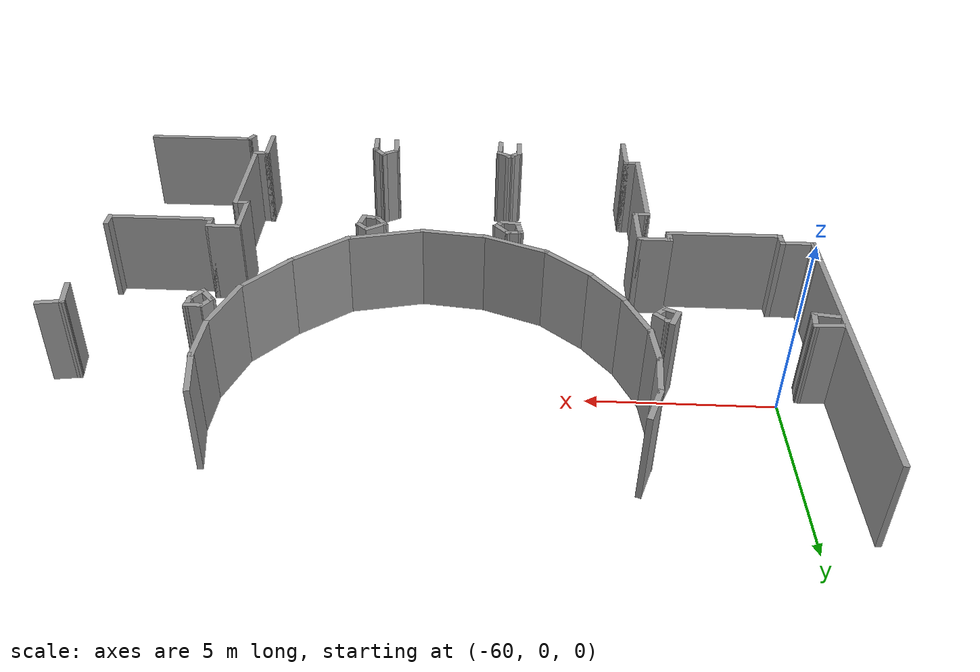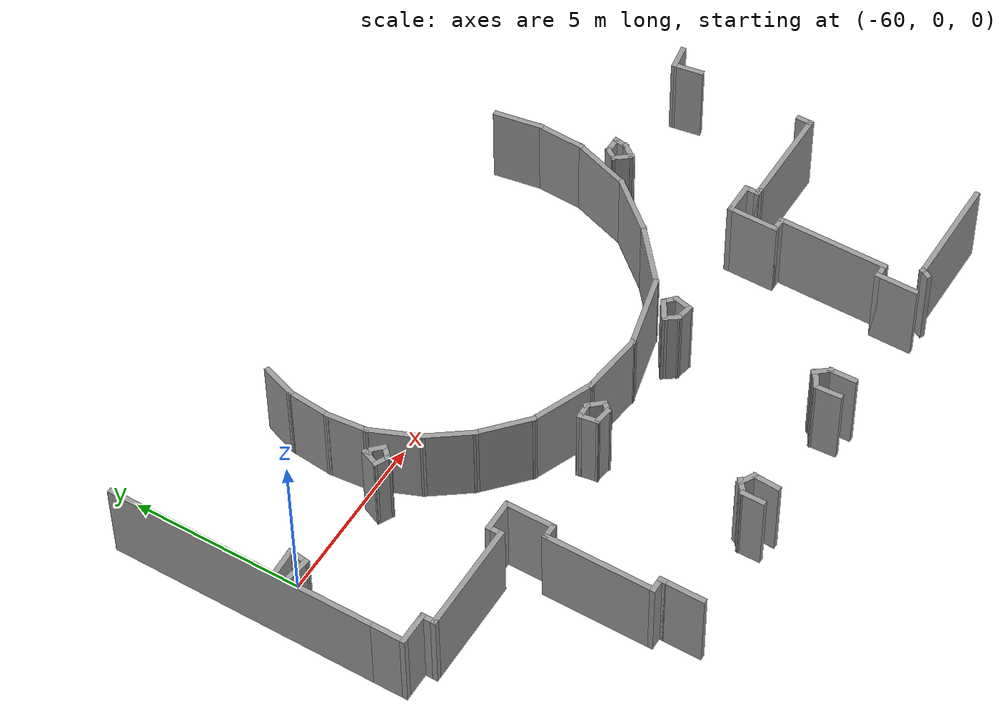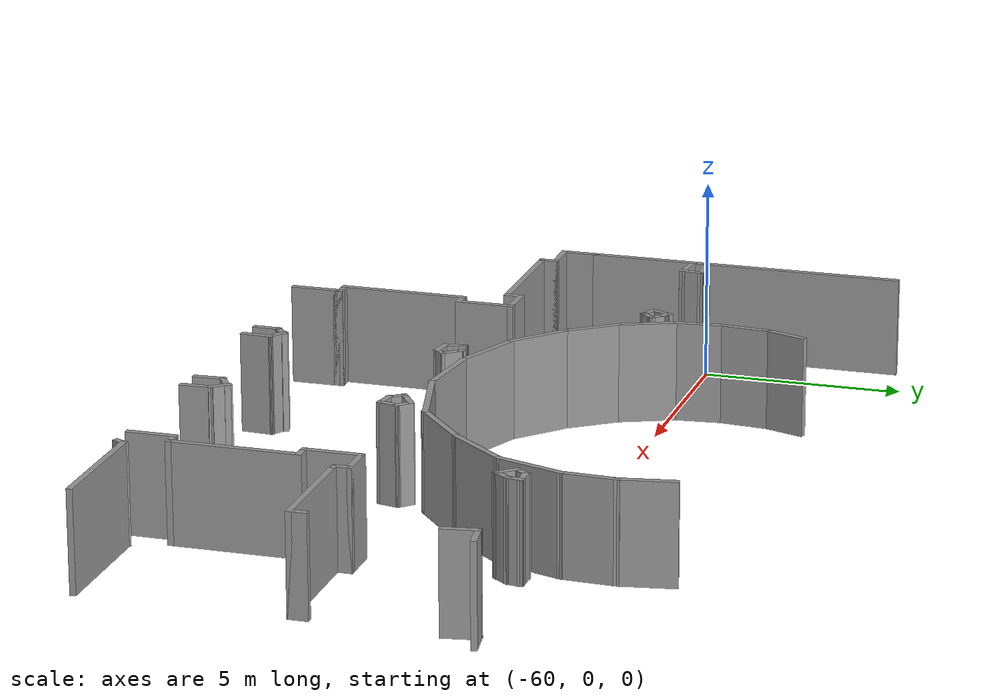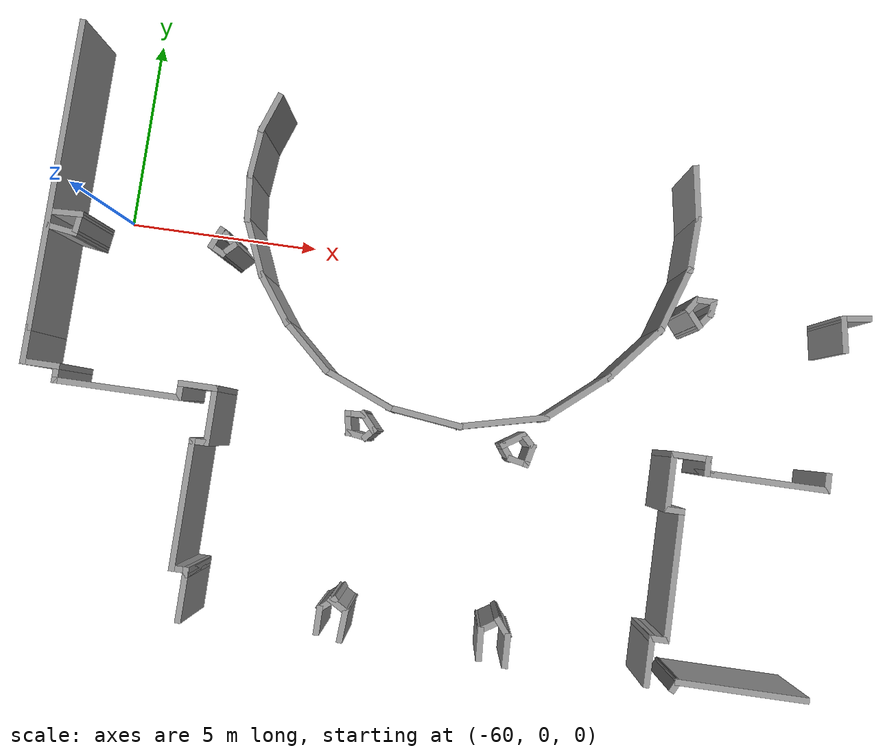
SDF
<sdf version="1.7">
 <model name="TD_n2">
  <pose>-6.42415 -9.1609 0 0 -0 0</pose>
  <link name="Wall_0">
   <collision name="Wall_0_Collision">
    <geometry><box><size>3.25 0.15 2.5</size></box></geometry>
    <pose>0 0 1.25 0 -0 0</pose>
   </collision>
   <visual name="Wall_0_Visual">
    <pose>0 0 1.25 0 -0 0</pose>
    <geometry><box><size>3.25 0.15 2.5</size></box></geometry>
    <material>
     <script><uri>file://media/materials/scripts/gazebo.material</uri><name>Gazebo/Grey</name></script>
     <ambient>1 1 1 1</ambient>
    </material>
    <meta><layer>0</layer></meta>
   </visual>
   <pose>-36.4624 -0.392626 0 0 -0 0</pose>
  </link>
  <link name="Wall_313">
   <collision name="Wall_313_Collision">
    <geometry><box><size>0.5 0.15 2.5</size></box></geometry>
    <pose>0 0 1.25 0 -0 0</pose>
   </collision>
   <visual name="Wall_313_Visual">
    <pose>0 0 1.25 0 -0 0</pose>
    <geometry><box><size>0.5 0.15 2.5</size></box></geometry>
    <material>
     <script><uri>file://media/materials/scripts/gazebo.material</uri><name>Gazebo/Grey</name></script>
     <ambient>1 1 1 1</ambient>
    </material>
    <meta><layer>0</layer></meta>
   </visual>
   <pose>-34.9534 4.82107 0 0 -0 -1.5708</pose>
  </link>
  <link name="Wall_314">
   <collision name="Wall_314_Collision">
    <geometry><box><size>3 0.15 2.5</size></box></geometry>
    <pose>0 0 1.25 0 -0 0</pose>
   </collision>
   <visual name="Wall_314_Visual">
    <pose>0 0 1.25 0 -0 0</pose>
    <geometry><box><size>3 0.15 2.5</size></box></geometry>
    <material>
     <script><uri>file://media/materials/scripts/gazebo.material</uri><name>Gazebo/Grey</name></script>
     <ambient>1 1 1 1</ambient>
    </material>
    <meta><layer>0</layer></meta>
   </visual>
   <pose>-36.3784 4.64607 0 0 -0 3.14159</pose>
  </link>
  <link name="Wall_315">
   <collision name="Wall_315_Collision">
    <geometry><box><size>0.25 0.15 2.5</size></box></geometry>
    <pose>0 0 1.25 0 -0 0</pose>
   </collision>
   <visual name="Wall_315_Visual">
    <pose>0 0 1.25 0 -0 0</pose>
    <geometry><box><size>0.25 0.15 2.5</size></box></geometry>
    <material>
     <script><uri>file://media/materials/scripts/gazebo.material</uri><name>Gazebo/Grey</name></script>
     <ambient>1 1 1 1</ambient>
    </material>
    <meta><layer>0</layer></meta>
   </visual>
   <pose>-37.8534 4.64607 0 0 -0 3.14159</pose>
  </link>
  <link name="Wall_316">
   <collision name="Wall_316_Collision">
    <geometry><box><size>0.5 0.15 2.5</size></box></geometry>
    <pose>0 0 1.25 0 -0 0</pose>
   </collision>
   <visual name="Wall_316_Visual">
    <pose>0 0 1.25 0 -0 0</pose>
    <geometry><box><size>0.5 0.15 2.5</size></box></geometry>
    <material>
     <script><uri>file://media/materials/scripts/gazebo.material</uri><name>Gazebo/Grey</name></script>
     <ambient>1 1 1 1</ambient>
    </material>
    <meta><layer>0</layer></meta>
   </visual>
   <pose>-37.9034 4.82107 0 0 -0 1.5708</pose>
  </link>
  <link name="Wall_317">
   <collision name="Wall_317_Collision">
    <geometry><box><size>1 0.15 2.5</size></box></geometry>
    <pose>0 0 1.25 0 -0 0</pose>
   </collision>
   <visual name="Wall_317_Visual">
    <pose>0 0 1.25 0 -0 0</pose>
    <geometry><box><size>1 0.15 2.5</size></box></geometry>
    <material>
     <script><uri>file://media/materials/scripts/gazebo.material</uri><name>Gazebo/Grey</name></script>
     <ambient>1 1 1 1</ambient>
    </material>
    <meta><layer>0</layer></meta>
   </visual>
   <pose>-38.3284 4.99607 0 0 -0 3.14159</pose>
  </link>
  <link name="Wall_319">
   <collision name="Wall_319_Collision">
    <geometry><box><size>1.5 0.15 2.5</size></box></geometry>
    <pose>0 0 1.25 0 -0 0</pose>
   </collision>
   <visual name="Wall_319_Visual">
    <pose>0 0 1.25 0 -0 0</pose>
    <geometry><box><size>1.5 0.15 2.5</size></box></geometry>
    <material>
     <script><uri>file://media/materials/scripts/gazebo.material</uri><name>Gazebo/Grey</name></script>
     <ambient>1 1 1 1</ambient>
    </material>
    <meta><layer>0</layer></meta>
   </visual>
   <pose>-38.7534 4.32107 0 0 -0 -1.5708</pose>
  </link>
  <link name="Wall_320">
   <collision name="Wall_320_Collision">
    <geometry><box><size>0.5 0.15 2.5</size></box></geometry>
    <pose>0 0 1.25 0 -0 0</pose>
   </collision>
   <visual name="Wall_320_Visual">
    <pose>0 0 1.25 0 -0 0</pose>
    <geometry><box><size>0.5 0.15 2.5</size></box></geometry>
    <material>
     <script><uri>file://media/materials/scripts/gazebo.material</uri><name>Gazebo/Grey</name></script>
     <ambient>1 1 1 1</ambient>
    </material>
    <meta><layer>0</layer></meta>
   </visual>
   <pose>-38.5784 3.64607 0 0 -0 0</pose>
  </link>
  <link name="Wall_321">
   <collision name="Wall_321_Collision">
    <geometry><box><size>3.25 0.15 2.5</size></box></geometry>
    <pose>0 0 1.25 0 -0 0</pose>
   </collision>
   <visual name="Wall_321_Visual">
    <pose>0 0 1.25 0 -0 0</pose>
    <geometry><box><size>3.25 0.15 2.5</size></box></geometry>
    <material>
     <script><uri>file://media/materials/scripts/gazebo.material</uri><name>Gazebo/Grey</name></script>
     <ambient>1 1 1 1</ambient>
    </material>
    <meta><layer>0</layer></meta>
   </visual>
   <pose>-38.4034 2.09607 0 0 -0 -1.5708</pose>
  </link>
  <link name="Wall_322">
   <collision name="Wall_322_Collision">
    <geometry><box><size>0.5 0.15 2.5</size></box></geometry>
    <pose>0 0 1.25 0 -0 0</pose>
   </collision>
   <visual name="Wall_322_Visual">
    <pose>0 0 1.25 0 -0 0</pose>
    <geometry><box><size>0.5 0.15 2.5</size></box></geometry>
    <material>
     <script><uri>file://media/materials/scripts/gazebo.material</uri><name>Gazebo/Grey</name></script>
     <ambient>1 1 1 1</ambient>
    </material>
    <meta><layer>0</layer></meta>
   </visual>
   <pose>-38.5784 0.546074 0 0 -0 3.14159</pose>
  </link>
  <link name="Wall_323">
   <collision name="Wall_323_Collision">
    <geometry><box><size>1.25 0.15 2.5</size></box></geometry>
    <pose>0 0 1.25 0 -0 0</pose>
   </collision>
   <visual name="Wall_323_Visual">
    <pose>0 0 1.25 0 -0 0</pose>
    <geometry><box><size>1.25 0.15 2.5</size></box></geometry>
    <material>
     <script><uri>file://media/materials/scripts/gazebo.material</uri><name>Gazebo/Grey</name></script>
     <ambient>1 1 1 1</ambient>
    </material>
    <meta><layer>0</layer></meta>
   </visual>
   <pose>-38.7534 -0.003925 0 0 -0 -1.5708</pose>
  </link>
  <link name="Wall_330">
   <collision name="Wall_330_Collision">
    <geometry><box><size>1.10908 0.15 2.5</size></box></geometry>
    <pose>0 0 1.25 0 -0 0</pose>
   </collision>
   <visual name="Wall_330_Visual">
    <pose>0 0 1.25 0 -0 0</pose>
    <geometry><box><size>1.10908 0.15 2.5</size></box></geometry>
    <material>
     <script><uri>file://media/materials/scripts/gazebo.material</uri><name>Gazebo/Grey</name></script>
     <ambient>1 1 1 1</ambient>
    </material>
    <meta><layer>0</layer></meta>
   </visual>
   <pose>-49.844 12.0698 0 0 -0 -1.91009</pose>
  </link>
  <link name="Wall_331">
   <collision name="Wall_331_Collision">
    <geometry><box><size>1.35173 0.15 2.5</size></box></geometry>
    <pose>0 0 1.25 0 -0 0</pose>
   </collision>
   <visual name="Wall_331_Visual">
    <pose>0 0 1.25 0 -0 0</pose>
    <geometry><box><size>1.35173 0.15 2.5</size></box></geometry>
    <material>
     <script><uri>file://media/materials/scripts/gazebo.material</uri><name>Gazebo/Grey</name></script>
     <ambient>1 1 1 1</ambient>
    </material>
    <meta><layer>0</layer></meta>
   </visual>
   <pose>-50.0568 11.0191 0 0 -0 -1.65945</pose>
  </link>
  <link name="Wall_332">
   <collision name="Wall_332_Collision">
    <geometry><box><size>1.27226 0.15 2.5</size></box></geometry>
    <pose>0 0 1.25 0 -0 0</pose>
   </collision>
   <visual name="Wall_332_Visual">
    <pose>0 0 1.25 0 -0 0</pose>
    <geometry><box><size>1.27226 0.15 2.5</size></box></geometry>
    <material>
     <script><uri>file://media/materials/scripts/gazebo.material</uri><name>Gazebo/Grey</name></script>
     <ambient>1 1 1 1</ambient>
    </material>
    <meta><layer>0</layer></meta>
   </visual>
   <pose>-50.0568 9.862 0 0 -0 -1.47585</pose>
  </link>
  <link name="Wall_333">
   <collision name="Wall_333_Collision">
    <geometry><box><size>1.59255 0.15 2.5</size></box></geometry>
    <pose>0 0 1.25 0 -0 0</pose>
   </collision>
   <visual name="Wall_333_Visual">
    <pose>0 0 1.25 0 -0 0</pose>
    <geometry><box><size>1.59255 0.15 2.5</size></box></geometry>
    <material>
     <script><uri>file://media/materials/scripts/gazebo.material</uri><name>Gazebo/Grey</name></script>
     <ambient>1 1 1 1</ambient>
    </material>
    <meta><layer>0</layer></meta>
   </visual>
   <pose>-49.7243 8.63839 0 0 -0 -1.17317</pose>
  </link>
  <link name="Wall_334">
   <collision name="Wall_334_Collision">
    <geometry><box><size>1.50138 0.15 2.5</size></box></geometry>
    <pose>0 0 1.25 0 -0 0</pose>
   </collision>
   <visual name="Wall_334_Visual">
    <pose>0 0 1.25 0 -0 0</pose>
    <geometry><box><size>1.50138 0.15 2.5</size></box></geometry>
    <material>
     <script><uri>file://media/materials/scripts/gazebo.material</uri><name>Gazebo/Grey</name></script>
     <ambient>1 1 1 1</ambient>
    </material>
    <meta><layer>0</layer></meta>
   </visual>
   <pose>-49.046 7.42808 0 0 -0 -0.939106</pose>
  </link>
  <link name="Wall_335">
   <collision name="Wall_335_Collision">
    <geometry><box><size>1.69419 0.15 2.5</size></box></geometry>
    <pose>0 0 1.25 0 -0 0</pose>
   </collision>
   <visual name="Wall_335_Visual">
    <pose>0 0 1.25 0 -0 0</pose>
    <geometry><box><size>1.69419 0.15 2.5</size></box></geometry>
    <material>
     <script><uri>file://media/materials/scripts/gazebo.material</uri><name>Gazebo/Grey</name></script>
     <ambient>1 1 1 1</ambient>
    </material>
    <meta><layer>0</layer></meta>
   </visual>
   <pose>-48.0751 6.36407 0 0 -0 -0.736656</pose>
  </link>
  <link name="Wall_336">
   <collision name="Wall_336_Collision">
    <geometry><box><size>1.96292 0.15 2.5</size></box></geometry>
    <pose>0 0 1.25 0 -0 0</pose>
   </collision>
   <visual name="Wall_336_Visual">
    <pose>0 0 1.25 0 -0 0</pose>
    <geometry><box><size>1.96292 0.15 2.5</size></box></geometry>
    <material>
     <script><uri>file://media/materials/scripts/gazebo.material</uri><name>Gazebo/Grey</name></script>
     <ambient>1 1 1 1</ambient>
    </material>
    <meta><layer>0</layer></meta>
   </visual>
   <pose>-46.6653 5.49956 0 0 -0 -0.391405</pose>
  </link>
  <link name="Wall_337">
   <collision name="Wall_337_Collision">
    <geometry><box><size>1.94487 0.15 2.5</size></box></geometry>
    <pose>0 0 1.25 0 -0 0</pose>
   </collision>
   <visual name="Wall_337_Visual">
    <pose>0 0 1.25 0 -0 0</pose>
    <geometry><box><size>1.94487 0.15 2.5</size></box></geometry>
    <material>
     <script><uri>file://media/materials/scripts/gazebo.material</uri><name>Gazebo/Grey</name></script>
     <ambient>1 1 1 1</ambient>
    </material>
    <meta><layer>0</layer></meta>
   </visual>
   <pose>-44.9363 5.04736 0 0 -0 -0.11884</pose>
  </link>
  <link name="Wall_338">
   <collision name="Wall_338_Collision">
    <geometry><box><size>2.28548 0.15 2.5</size></box></geometry>
    <pose>0 0 1.25 0 -0 0</pose>
   </collision>
   <visual name="Wall_338_Visual">
    <pose>0 0 1.25 0 -0 0</pose>
    <geometry><box><size>2.28548 0.15 2.5</size></box></geometry>
    <material>
     <script><uri>file://media/materials/scripts/gazebo.material</uri><name>Gazebo/Grey</name></script>
     <ambient>1 1 1 1</ambient>
    </material>
    <meta><layer>0</layer></meta>
   </visual>
   <pose>-43.0078 5.19366 0 0 -0 0.238936</pose>
  </link>
  <link name="Wall_339">
   <collision name="Wall_339_Collision">
    <geometry><box><size>1.99943 0.15 2.5</size></box></geometry>
    <pose>0 0 1.25 0 -0 0</pose>
   </collision>
   <visual name="Wall_339_Visual">
    <pose>0 0 1.25 0 -0 0</pose>
    <geometry><box><size>1.99943 0.15 2.5</size></box></geometry>
    <material>
     <script><uri>file://media/materials/scripts/gazebo.material</uri><name>Gazebo/Grey</name></script>
     <ambient>1 1 1 1</ambient>
    </material>
    <meta><layer>0</layer></meta>
   </visual>
   <pose>-41.2655 6.04487 0 0 -0 0.703946</pose>
  </link>
  <link name="Wall_340">
   <collision name="Wall_340_Collision">
    <geometry><box><size>1.88698 0.15 2.5</size></box></geometry>
    <pose>0 0 1.25 0 -0 0</pose>
   </collision>
   <visual name="Wall_340_Visual">
    <pose>0 0 1.25 0 -0 0</pose>
    <geometry><box><size>1.88698 0.15 2.5</size></box></geometry>
    <material>
     <script><uri>file://media/materials/scripts/gazebo.material</uri><name>Gazebo/Grey</name></script>
     <ambient>1 1 1 1</ambient>
    </material>
    <meta><layer>0</layer></meta>
   </visual>
   <pose>-40.002 7.30838 0 0 -0 0.872137</pose>
  </link>
  <link name="Wall_341">
   <collision name="Wall_341_Collision">
    <geometry><box><size>1.83234 0.15 2.5</size></box></geometry>
    <pose>0 0 1.25 0 -0 0</pose>
   </collision>
   <visual name="Wall_341_Visual">
    <pose>0 0 1.25 0 -0 0</pose>
    <geometry><box><size>1.83234 0.15 2.5</size></box></geometry>
    <material>
     <script><uri>file://media/materials/scripts/gazebo.material</uri><name>Gazebo/Grey</name></script>
     <ambient>1 1 1 1</ambient>
    </material>
    <meta><layer>0</layer></meta>
   </visual>
   <pose>-39.1773 8.77139 0 0 -0 1.24905</pose>
  </link>
  <link name="Wall_342">
   <collision name="Wall_342_Collision">
    <geometry><box><size>1.45368 0.15 2.5</size></box></geometry>
    <pose>0 0 1.25 0 -0 0</pose>
   </collision>
   <visual name="Wall_342_Visual">
    <pose>0 0 1.25 0 -0 0</pose>
    <geometry><box><size>1.45368 0.15 2.5</size></box></geometry>
    <material>
     <script><uri>file://media/materials/scripts/gazebo.material</uri><name>Gazebo/Grey</name></script>
     <ambient>1 1 1 1</ambient>
    </material>
    <meta><layer>0</layer></meta>
   </visual>
   <pose>-38.8847 10.2211 0 0 -0 1.53</pose>
  </link>
  <link name="Wall_343">
   <collision name="Wall_343_Collision">
    <geometry><box><size>1.44442 0.15 2.5</size></box></geometry>
    <pose>0 0 1.25 0 -0 0</pose>
   </collision>
   <visual name="Wall_343_Visual">
    <pose>0 0 1.25 0 -0 0</pose>
    <geometry><box><size>1.44442 0.15 2.5</size></box></geometry>
    <material>
     <script><uri>file://media/materials/scripts/gazebo.material</uri><name>Gazebo/Grey</name></script>
     <ambient>1 1 1 1</ambient>
    </material>
    <meta><layer>0</layer></meta>
   </visual>
   <pose>-38.9645 11.5112 0 0 -0 1.73595</pose>
  </link>
  <link name="Wall_388">
   <collision name="Wall_388_Collision">
    <geometry><box><size>0.25 0.15 2.5</size></box></geometry>
    <pose>0 0 1.25 0 -0 0</pose>
   </collision>
   <visual name="Wall_388_Visual">
    <pose>0 0 1.25 0 -0 0</pose>
    <geometry><box><size>0.25 0.15 2.5</size></box></geometry>
    <material>
     <script><uri>file://media/materials/scripts/gazebo.material</uri><name>Gazebo/Grey</name></script>
     <ambient>1 1 1 1</ambient>
    </material>
    <meta><layer>0</layer></meta>
   </visual>
   <pose>-50.5201 8.85258 0 0 -0 0</pose>
  </link>
  <link name="Wall_389">
   <collision name="Wall_389_Collision">
    <geometry><box><size>0.5 0.15 2.5</size></box></geometry>
    <pose>0 0 1.25 0 -0 0</pose>
   </collision>
   <visual name="Wall_389_Visual">
    <pose>0 0 1.25 0 -0 0</pose>
    <geometry><box><size>0.5 0.15 2.5</size></box></geometry>
    <material>
     <script><uri>file://media/materials/scripts/gazebo.material</uri><name>Gazebo/Grey</name></script>
     <ambient>1 1 1 1</ambient>
    </material>
    <meta><layer>0</layer></meta>
   </visual>
   <pose>-50.3463 8.72884 0 0 -0 -0.785398</pose>
  </link>
  <link name="Wall_390">
   <collision name="Wall_390_Collision">
    <geometry><box><size>0.5 0.15 2.5</size></box></geometry>
    <pose>0 0 1.25 0 -0 0</pose>
   </collision>
   <visual name="Wall_390_Visual">
    <pose>0 0 1.25 0 -0 0</pose>
    <geometry><box><size>0.5 0.15 2.5</size></box></geometry>
    <material>
     <script><uri>file://media/materials/scripts/gazebo.material</uri><name>Gazebo/Grey</name></script>
     <ambient>1 1 1 1</ambient>
    </material>
    <meta><layer>0</layer></meta>
   </visual>
   <pose>-50.3463 8.48135 0 0 -0 -2.35619</pose>
  </link>
  <link name="Wall_391">
   <collision name="Wall_391_Collision">
    <geometry><box><size>0.501846 0.15 2.5</size></box></geometry>
    <pose>0 0 1.25 0 -0 0</pose>
   </collision>
   <visual name="Wall_391_Visual">
    <pose>0 0 1.25 0 -0 0</pose>
    <geometry><box><size>0.501846 0.15 2.5</size></box></geometry>
    <material>
     <script><uri>file://media/materials/scripts/gazebo.material</uri><name>Gazebo/Grey</name></script>
     <ambient>1 1 1 1</ambient>
    </material>
    <meta><layer>0</layer></meta>
   </visual>
   <pose>-50.6271 8.43685 0 0 -0 2.67434</pose>
  </link>
  <link name="Wall_392">
   <collision name="Wall_392_Collision">
    <geometry><box><size>0.615936 0.15 2.5</size></box></geometry>
    <pose>0 0 1.25 0 -0 0</pose>
   </collision>
   <visual name="Wall_392_Visual">
    <pose>0 0 1.25 0 -0 0</pose>
    <geometry><box><size>0.615936 0.15 2.5</size></box></geometry>
    <material>
     <script><uri>file://media/materials/scripts/gazebo.material</uri><name>Gazebo/Grey</name></script>
     <ambient>1 1 1 1</ambient>
    </material>
    <meta><layer>0</layer></meta>
   </visual>
   <pose>-50.6924 8.73022 0 0 -0 1.1659</pose>
  </link>
  <link name="Wall_394">
   <collision name="Wall_394_Collision">
    <geometry><box><size>0.5 0.15 2.5</size></box></geometry>
    <pose>0 0 1.25 0 -0 0</pose>
   </collision>
   <visual name="Wall_394_Visual">
    <pose>0 0 1.25 0 -0 0</pose>
    <geometry><box><size>0.5 0.15 2.5</size></box></geometry>
    <material>
     <script><uri>file://media/materials/scripts/gazebo.material</uri><name>Gazebo/Grey</name></script>
     <ambient>1 1 1 1</ambient>
    </material>
    <meta><layer>0</layer></meta>
   </visual>
   <pose>-38.4037 8.85258 0 0 -0 0</pose>
  </link>
  <link name="Wall_395">
   <collision name="Wall_395_Collision">
    <geometry><box><size>0.459064 0.15 2.5</size></box></geometry>
    <pose>0 0 1.25 0 -0 0</pose>
   </collision>
   <visual name="Wall_395_Visual">
    <pose>0 0 1.25 0 -0 0</pose>
    <geometry><box><size>0.459064 0.15 2.5</size></box></geometry>
    <material>
     <script><uri>file://media/materials/scripts/gazebo.material</uri><name>Gazebo/Grey</name></script>
     <ambient>1 1 1 1</ambient>
    </material>
    <meta><layer>0</layer></meta>
   </visual>
   <pose>-38.2507 8.69963 0 0 -0 -1.71397</pose>
  </link>
  <link name="Wall_396">
   <collision name="Wall_396_Collision">
    <geometry><box><size>0.566072 0.15 2.5</size></box></geometry>
    <pose>0 0 1.25 0 -0 0</pose>
   </collision>
   <visual name="Wall_396_Visual">
    <pose>0 0 1.25 0 -0 0</pose>
    <geometry><box><size>0.566072 0.15 2.5</size></box></geometry>
    <material>
     <script><uri>file://media/materials/scripts/gazebo.material</uri><name>Gazebo/Grey</name></script>
     <ambient>1 1 1 1</ambient>
    </material>
    <meta><layer>0</layer></meta>
   </visual>
   <pose>-38.3952 8.37843 0 0 -0 -2.19959</pose>
  </link>
  <link name="Wall_397">
   <collision name="Wall_397_Collision">
    <geometry><box><size>0.627835 0.15 2.5</size></box></geometry>
    <pose>0 0 1.25 0 -0 0</pose>
   </collision>
   <visual name="Wall_397_Visual">
    <pose>0 0 1.25 0 -0 0</pose>
    <geometry><box><size>0.627835 0.15 2.5</size></box></geometry>
    <material>
     <script><uri>file://media/materials/scripts/gazebo.material</uri><name>Gazebo/Grey</name></script>
     <ambient>1 1 1 1</ambient>
    </material>
    <meta><layer>0</layer></meta>
   </visual>
   <pose>-38.6705 8.39373 0 0 -0 2.26553</pose>
  </link>
  <link name="Wall_398">
   <collision name="Wall_398_Collision">
    <geometry><box><size>0.480884 0.15 2.5</size></box></geometry>
    <pose>0 0 1.25 0 -0 0</pose>
   </collision>
   <visual name="Wall_398_Visual">
    <pose>0 0 1.25 0 -0 0</pose>
    <geometry><box><size>0.480884 0.15 2.5</size></box></geometry>
    <material>
     <script><uri>file://media/materials/scripts/gazebo.material</uri><name>Gazebo/Grey</name></script>
     <ambient>1 1 1 1</ambient>
    </material>
    <meta><layer>0</layer></meta>
   </visual>
   <pose>-38.7316 8.71492 0 0 -0 0.982794</pose>
  </link>
  <link name="Wall_404">
   <collision name="Wall_404_Collision">
    <geometry><box><size>0.915367 0.15 2.5</size></box></geometry>
    <pose>0 0 1.25 0 -0 0</pose>
   </collision>
   <visual name="Wall_404_Visual">
    <pose>0 0 1.25 0 -0 0</pose>
    <geometry><box><size>0.915367 0.15 2.5</size></box></geometry>
    <material>
     <script><uri>file://media/materials/scripts/gazebo.material</uri><name>Gazebo/Grey</name></script>
     <ambient>1 1 1 1</ambient>
    </material>
    <meta><layer>0</layer></meta>
   </visual>
   <pose>-54.5315 8.83729 0 0 -0 0.039979</pose>
  </link>
  <link name="Wall_405">
   <collision name="Wall_405_Collision">
    <geometry><box><size>0.643253 0.15 2.5</size></box></geometry>
    <pose>0 0 1.25 0 -0 0</pose>
   </collision>
   <visual name="Wall_405_Visual">
    <pose>0 0 1.25 0 -0 0</pose>
    <geometry><box><size>0.643253 0.15 2.5</size></box></geometry>
    <material>
     <script><uri>file://media/materials/scripts/gazebo.material</uri><name>Gazebo/Grey</name></script>
     <ambient>1 1 1 1</ambient>
    </material>
    <meta><layer>0</layer></meta>
   </visual>
   <pose>-54.1797 8.60786 0 0 -0 -1.69515</pose>
  </link>
  <link name="Wall_406">
   <collision name="Wall_406_Collision">
    <geometry><box><size>0.798917 0.15 2.5</size></box></geometry>
    <pose>0 0 1.25 0 -0 0</pose>
   </collision>
   <visual name="Wall_406_Visual">
    <pose>0 0 1.25 0 -0 0</pose>
    <geometry><box><size>0.798917 0.15 2.5</size></box></geometry>
    <material>
     <script><uri>file://media/materials/scripts/gazebo.material</uri><name>Gazebo/Grey</name></script>
     <ambient>1 1 1 1</ambient>
    </material>
    <meta><layer>0</layer></meta>
   </visual>
   <pose>-54.5315 8.40902 0 0 -0 2.9997</pose>
  </link>
  <link name="Wall_412">
   <collision name="Wall_412_Collision">
    <geometry><box><size>0.768649 0.15 2.5</size></box></geometry>
    <pose>0 0 1.25 0 -0 0</pose>
   </collision>
   <visual name="Wall_412_Visual">
    <pose>0 0 1.25 0 -0 0</pose>
    <geometry><box><size>0.768649 0.15 2.5</size></box></geometry>
    <material>
     <script><uri>file://media/materials/scripts/gazebo.material</uri><name>Gazebo/Grey</name></script>
     <ambient>1 1 1 1</ambient>
    </material>
    <meta><layer>0</layer></meta>
   </visual>
   <pose>-34.6937 8.92906 0 0 -0 -2.9927</pose>
  </link>
  <link name="Wall_413">
   <collision name="Wall_413_Collision">
    <geometry><box><size>0.924483 0.15 2.5</size></box></geometry>
    <pose>0 0 1.25 0 -0 0</pose>
   </collision>
   <visual name="Wall_413_Visual">
    <pose>0 0 1.25 0 -0 0</pose>
    <geometry><box><size>0.924483 0.15 2.5</size></box></geometry>
    <material>
     <script><uri>file://media/materials/scripts/gazebo.material</uri><name>Gazebo/Grey</name></script>
     <ambient>1 1 1 1</ambient>
    </material>
    <meta><layer>0</layer></meta>
   </visual>
   <pose>-34.9385 8.50079 0 0 -0 -1.41214</pose>
  </link>
  <link name="Wall_419">
   <collision name="Wall_419_Collision">
    <geometry><box><size>0.634399 0.15 2.5</size></box></geometry>
    <pose>0 0 1.25 0 -0 0</pose>
   </collision>
   <visual name="Wall_419_Visual">
    <pose>0 0 1.25 0 -0 0</pose>
    <geometry><box><size>0.634399 0.15 2.5</size></box></geometry>
    <material>
     <script><uri>file://media/materials/scripts/gazebo.material</uri><name>Gazebo/Grey</name></script>
     <ambient>1 1 1 1</ambient>
    </material>
    <meta><layer>0</layer></meta>
   </visual>
   <pose>-46.2842 4.73255 0 0 -0 -0.844154</pose>
  </link>
  <link name="Wall_420">
   <collision name="Wall_420_Collision">
    <geometry><box><size>0.4206 0.15 2.5</size></box></geometry>
    <pose>0 0 1.25 0 -0 0</pose>
   </collision>
   <visual name="Wall_420_Visual">
    <pose>0 0 1.25 0 -0 0</pose>
    <geometry><box><size>0.4206 0.15 2.5</size></box></geometry>
    <material>
     <script><uri>file://media/materials/scripts/gazebo.material</uri><name>Gazebo/Grey</name></script>
     <ambient>1 1 1 1</ambient>
    </material>
    <meta><layer>0</layer></meta>
   </visual>
   <pose>-46.2138 4.45096 0 0 -0 -2.30361</pose>
  </link>
  <link name="Wall_421">
   <collision name="Wall_421_Collision">
    <geometry><box><size>0.576673 0.15 2.5</size></box></geometry>
    <pose>0 0 1.25 0 -0 0</pose>
   </collision>
   <visual name="Wall_421_Visual">
    <pose>0 0 1.25 0 -0 0</pose>
    <geometry><box><size>0.576673 0.15 2.5</size></box></geometry>
    <material>
     <script><uri>file://media/materials/scripts/gazebo.material</uri><name>Gazebo/Grey</name></script>
     <ambient>1 1 1 1</ambient>
    </material>
    <meta><layer>0</layer></meta>
   </visual>
   <pose>-46.5155 4.38056 0 0 -0 2.9997</pose>
  </link>
  <link name="Wall_422">
   <collision name="Wall_422_Collision">
    <geometry><box><size>0.619556 0.15 2.5</size></box></geometry>
    <pose>0 0 1.25 0 -0 0</pose>
   </collision>
   <visual name="Wall_422_Visual">
    <pose>0 0 1.25 0 -0 0</pose>
    <geometry><box><size>0.619556 0.15 2.5</size></box></geometry>
    <material>
     <script><uri>file://media/materials/scripts/gazebo.material</uri><name>Gazebo/Grey</name></script>
     <ambient>1 1 1 1</ambient>
    </material>
    <meta><layer>0</layer></meta>
   </visual>
   <pose>-46.7669 4.64203 0 0 -0 1.74299</pose>
  </link>
  <link name="Wall_423">
   <collision name="Wall_423_Collision">
    <geometry><box><size>0.512603 0.15 2.5</size></box></geometry>
    <pose>0 0 1.25 0 -0 0</pose>
   </collision>
   <visual name="Wall_423_Visual">
    <pose>0 0 1.25 0 -0 0</pose>
    <geometry><box><size>0.512603 0.15 2.5</size></box></geometry>
    <material>
     <script><uri>file://media/materials/scripts/gazebo.material</uri><name>Gazebo/Grey</name></script>
     <ambient>1 1 1 1</ambient>
    </material>
    <meta><layer>0</layer></meta>
   </visual>
   <pose>-46.6261 4.8834 0 0 -0 0.055499</pose>
  </link>
  <link name="Wall_425">
   <collision name="Wall_425_Collision">
    <geometry><box><size>0.462894 0.15 2.5</size></box></geometry>
    <pose>0 0 1.25 0 -0 0</pose>
   </collision>
   <visual name="Wall_425_Visual">
    <pose>0 0 1.25 0 -0 0</pose>
    <geometry><box><size>0.462894 0.15 2.5</size></box></geometry>
    <material>
     <script><uri>file://media/materials/scripts/gazebo.material</uri><name>Gazebo/Grey</name></script>
     <ambient>1 1 1 1</ambient>
    </material>
    <meta><layer>0</layer></meta>
   </visual>
   <pose>-42.3118 4.80294 0 0 -0 -0.785398</pose>
  </link>
  <link name="Wall_426">
   <collision name="Wall_426_Collision">
    <geometry><box><size>0.603783 0.15 2.5</size></box></geometry>
    <pose>0 0 1.25 0 -0 0</pose>
   </collision>
   <visual name="Wall_426_Visual">
    <pose>0 0 1.25 0 -0 0</pose>
    <geometry><box><size>0.603783 0.15 2.5</size></box></geometry>
    <material>
     <script><uri>file://media/materials/scripts/gazebo.material</uri><name>Gazebo/Grey</name></script>
     <ambient>1 1 1 1</ambient>
    </material>
    <meta><layer>0</layer></meta>
   </visual>
   <pose>-42.2514 4.47107 0 0 -0 -1.79427</pose>
  </link>
  <link name="Wall_427">
   <collision name="Wall_427_Collision">
    <geometry><box><size>0.560238 0.15 2.5</size></box></geometry>
    <pose>0 0 1.25 0 -0 0</pose>
   </collision>
   <visual name="Wall_427_Visual">
    <pose>0 0 1.25 0 -0 0</pose>
    <geometry><box><size>0.560238 0.15 2.5</size></box></geometry>
    <material>
     <script><uri>file://media/materials/scripts/gazebo.material</uri><name>Gazebo/Grey</name></script>
     <ambient>1 1 1 1</ambient>
    </material>
    <meta><layer>0</layer></meta>
   </visual>
   <pose>-42.5029 4.29005 0 0 -0 2.9442</pose>
  </link>
  <link name="Wall_428">
   <collision name="Wall_428_Collision">
    <geometry><box><size>0.524134 0.15 2.5</size></box></geometry>
    <pose>0 0 1.25 0 -0 0</pose>
   </collision>
   <visual name="Wall_428_Visual">
    <pose>0 0 1.25 0 -0 0</pose>
    <geometry><box><size>0.524134 0.15 2.5</size></box></geometry>
    <material>
     <script><uri>file://media/materials/scripts/gazebo.material</uri><name>Gazebo/Grey</name></script>
     <ambient>1 1 1 1</ambient>
    </material>
    <meta><layer>0</layer></meta>
   </visual>
   <pose>-42.8146 4.48113 0 0 -0 2.20355</pose>
  </link>
  <link name="Wall_429">
   <collision name="Wall_429_Collision">
    <geometry><box><size>0.7023 0.15 2.5</size></box></geometry>
    <pose>0 0 1.25 0 -0 0</pose>
   </collision>
   <visual name="Wall_429_Visual">
    <pose>0 0 1.25 0 -0 0</pose>
    <geometry><box><size>0.7023 0.15 2.5</size></box></geometry>
    <material>
     <script><uri>file://media/materials/scripts/gazebo.material</uri><name>Gazebo/Grey</name></script>
     <ambient>1 1 1 1</ambient>
    </material>
    <meta><layer>0</layer></meta>
   </visual>
   <pose>-42.6939 4.78283 0 0 -0 0.577902</pose>
  </link>
  <link name="Wall_431">
   <collision name="Wall_431_Collision">
    <geometry><box><size>0.591583 0.15 2.5</size></box></geometry>
    <pose>0 0 1.25 0 -0 0</pose>
   </collision>
   <visual name="Wall_431_Visual">
    <pose>0 0 1.25 0 -0 0</pose>
    <geometry><box><size>0.591583 0.15 2.5</size></box></geometry>
    <material>
     <script><uri>file://media/materials/scripts/gazebo.material</uri><name>Gazebo/Grey</name></script>
     <ambient>1 1 1 1</ambient>
    </material>
    <meta><layer>0</layer></meta>
   </visual>
   <pose>-46.3546 0.257277 0 0 -0 -0.524796</pose>
  </link>
  <link name="Wall_432">
   <collision name="Wall_432_Collision">
    <geometry><box><size>0.835044 0.15 2.5</size></box></geometry>
    <pose>0 0 1.25 0 -0 0</pose>
   </collision>
   <visual name="Wall_432_Visual">
    <pose>0 0 1.25 0 -0 0</pose>
    <geometry><box><size>0.835044 0.15 2.5</size></box></geometry>
    <material>
     <script><uri>file://media/materials/scripts/gazebo.material</uri><name>Gazebo/Grey</name></script>
     <ambient>1 1 1 1</ambient>
    </material>
    <meta><layer>0</layer></meta>
   </visual>
   <pose>-46.1836 -0.195279 0 0 -0 -1.62955</pose>
  </link>
  <link name="Wall_435">
   <collision name="Wall_435_Collision">
    <geometry><box><size>0.71318 0.15 2.5</size></box></geometry>
    <pose>0 0 1.25 0 -0 0</pose>
   </collision>
   <visual name="Wall_435_Visual">
    <pose>0 0 1.25 0 -0 0</pose>
    <geometry><box><size>0.71318 0.15 2.5</size></box></geometry>
    <material>
     <script><uri>file://media/materials/scripts/gazebo.material</uri><name>Gazebo/Grey</name></script>
     <ambient>1 1 1 1</ambient>
    </material>
    <meta><layer>0</layer></meta>
   </visual>
   <pose>-46.7871 -0.155051 0 0 -0 1.5708</pose>
  </link>
  <link name="Wall_436">
   <collision name="Wall_436_Collision">
    <geometry><box><size>0.564652 0.15 2.5</size></box></geometry>
    <pose>0 0 1.25 0 -0 0</pose>
   </collision>
   <visual name="Wall_436_Visual">
    <pose>0 0 1.25 0 -0 0</pose>
    <geometry><box><size>0.564652 0.15 2.5</size></box></geometry>
    <material>
     <script><uri>file://media/materials/scripts/gazebo.material</uri><name>Gazebo/Grey</name></script>
     <ambient>1 1 1 1</ambient>
    </material>
    <meta><layer>0</layer></meta>
   </visual>
   <pose>-46.6261 0.257277 0 0 -0 0.682317</pose>
  </link>
  <link name="Wall_438">
   <collision name="Wall_438_Collision">
    <geometry><box><size>0.592955 0.15 2.5</size></box></geometry>
    <pose>0 0 1.25 0 -0 0</pose>
   </collision>
   <visual name="Wall_438_Visual">
    <pose>0 0 1.25 0 -0 0</pose>
    <geometry><box><size>0.592955 0.15 2.5</size></box></geometry>
    <material>
     <script><uri>file://media/materials/scripts/gazebo.material</uri><name>Gazebo/Grey</name></script>
     <ambient>1 1 1 1</ambient>
    </material>
    <meta><layer>0</layer></meta>
   </visual>
   <pose>-42.342 0.27739 0 0 -0 -0.881872</pose>
  </link>
  <link name="Wall_439">
   <collision name="Wall_439_Collision">
    <geometry><box><size>0.834157 0.15 2.5</size></box></geometry>
    <pose>0 0 1.25 0 -0 0</pose>
   </collision>
   <visual name="Wall_439_Visual">
    <pose>0 0 1.25 0 -0 0</pose>
    <geometry><box><size>0.834157 0.15 2.5</size></box></geometry>
    <material>
     <script><uri>file://media/materials/scripts/gazebo.material</uri><name>Gazebo/Grey</name></script>
     <ambient>1 1 1 1</ambient>
    </material>
    <meta><layer>0</layer></meta>
   </visual>
   <pose>-42.1911 -0.235506 0 0 -0 -1.54139</pose>
  </link>
  <link name="Wall_44">
   <collision name="Wall_44_Collision">
    <geometry><box><size>0.365621 0.15 2.5</size></box></geometry>
    <pose>0 0 1.25 0 -0 0</pose>
   </collision>
   <visual name="Wall_44_Visual">
    <pose>0 0 1.25 0 -0 0</pose>
    <geometry><box><size>0.365621 0.15 2.5</size></box></geometry>
    <material>
     <script><uri>file://media/materials/scripts/gazebo.material</uri><name>Gazebo/Grey</name></script>
     <ambient>1 1 1 1</ambient>
    </material>
    <meta><layer>0</layer></meta>
   </visual>
   <pose>-38.0609 -0.488916 0 0 -0 1.10428</pose>
  </link>
  <link name="Wall_442">
   <collision name="Wall_442_Collision">
    <geometry><box><size>0.814966 0.15 2.5</size></box></geometry>
    <pose>0 0 1.25 0 -0 0</pose>
   </collision>
   <visual name="Wall_442_Visual">
    <pose>0 0 1.25 0 -0 0</pose>
    <geometry><box><size>0.814966 0.15 2.5</size></box></geometry>
    <material>
     <script><uri>file://media/materials/scripts/gazebo.material</uri><name>Gazebo/Grey</name></script>
     <ambient>1 1 1 1</ambient>
    </material>
    <meta><layer>0</layer></meta>
   </visual>
   <pose>-42.8448 -0.165109 0 0 -0 1.63133</pose>
  </link>
  <link name="Wall_443">
   <collision name="Wall_443_Collision">
    <geometry><box><size>0.646769 0.15 2.5</size></box></geometry>
    <pose>0 0 1.25 0 -0 0</pose>
   </collision>
   <visual name="Wall_443_Visual">
    <pose>0 0 1.25 0 -0 0</pose>
    <geometry><box><size>0.646769 0.15 2.5</size></box></geometry>
    <material>
     <script><uri>file://media/materials/scripts/gazebo.material</uri><name>Gazebo/Grey</name></script>
     <ambient>1 1 1 1</ambient>
    </material>
    <meta><layer>0</layer></meta>
   </visual>
   <pose>-42.6537 0.297503 0 0 -0 0.554307</pose>
  </link>
  <link name="Wall_81">
   <collision name="Wall_81_Collision">
    <geometry><box><size>1.25 0.15 2.5</size></box></geometry>
    <pose>0 0 1.25 0 -0 0</pose>
   </collision>
   <visual name="Wall_81_Visual">
    <pose>0 0 1.25 0 -0 0</pose>
    <geometry><box><size>1.25 0.15 2.5</size></box></geometry>
    <material>
     <script><uri>file://media/materials/scripts/gazebo.material</uri><name>Gazebo/Grey</name></script>
     <ambient>1 1 1 1</ambient>
    </material>
    <meta><layer>0</layer></meta>
   </visual>
   <pose>-50.1332 -0.071193 0 0 -0 1.5708</pose>
  </link>
  <link name="Wall_84">
   <collision name="Wall_84_Collision">
    <geometry><box><size>0.15 0.15 2.5</size></box></geometry>
    <pose>0 0 1.25 0 -0 0</pose>
   </collision>
   <visual name="Wall_84_Visual">
    <pose>0 0 1.25 0 -0 0</pose>
    <geometry><box><size>0.15 0.15 2.5</size></box></geometry>
    <material>
     <script><uri>file://media/materials/scripts/gazebo.material</uri><name>Gazebo/Grey</name></script>
     <ambient>1 1 1 1</ambient>
    </material>
    <meta><layer>0</layer></meta>
   </visual>
   <pose>-50.1332 0.478807 0 0 -0 0</pose>
  </link>
  <link name="Wall_85">
   <collision name="Wall_85_Collision">
    <geometry><box><size>0.25 0.15 2.5</size></box></geometry>
    <pose>0 0 1.25 0 -0 0</pose>
   </collision>
   <visual name="Wall_85_Visual">
    <pose>0 0 1.25 0 -0 0</pose>
    <geometry><box><size>0.25 0.15 2.5</size></box></geometry>
    <material>
     <script><uri>file://media/materials/scripts/gazebo.material</uri><name>Gazebo/Grey</name></script>
     <ambient>1 1 1 1</ambient>
    </material>
    <meta><layer>0</layer></meta>
   </visual>
   <pose>-50.1332 0.528807 0 0 -0 1.5708</pose>
  </link>
  <link name="Wall_86">
   <collision name="Wall_86_Collision">
    <geometry><box><size>0.5 0.15 2.5</size></box></geometry>
    <pose>0 0 1.25 0 -0 0</pose>
   </collision>
   <visual name="Wall_86_Visual">
    <pose>0 0 1.25 0 -0 0</pose>
    <geometry><box><size>0.5 0.15 2.5</size></box></geometry>
    <material>
     <script><uri>file://media/materials/scripts/gazebo.material</uri><name>Gazebo/Grey</name></script>
     <ambient>1 1 1 1</ambient>
    </material>
    <meta><layer>0</layer></meta>
   </visual>
   <pose>-50.3082 0.578807 0 0 -0 3.14159</pose>
  </link>
  <link name="Wall_87">
   <collision name="Wall_87_Collision">
    <geometry><box><size>3.25 0.15 2.5</size></box></geometry>
    <pose>0 0 1.25 0 -0 0</pose>
   </collision>
   <visual name="Wall_87_Visual">
    <pose>0 0 1.25 0 -0 0</pose>
    <geometry><box><size>3.25 0.15 2.5</size></box></geometry>
    <material>
     <script><uri>file://media/materials/scripts/gazebo.material</uri><name>Gazebo/Grey</name></script>
     <ambient>1 1 1 1</ambient>
    </material>
    <meta><layer>0</layer></meta>
   </visual>
   <pose>-50.4832 2.12881 0 0 -0 1.5708</pose>
  </link>
  <link name="Wall_88">
   <collision name="Wall_88_Collision">
    <geometry><box><size>0.5 0.15 2.5</size></box></geometry>
    <pose>0 0 1.25 0 -0 0</pose>
   </collision>
   <visual name="Wall_88_Visual">
    <pose>0 0 1.25 0 -0 0</pose>
    <geometry><box><size>0.5 0.15 2.5</size></box></geometry>
    <material>
     <script><uri>file://media/materials/scripts/gazebo.material</uri><name>Gazebo/Grey</name></script>
     <ambient>1 1 1 1</ambient>
    </material>
    <meta><layer>0</layer></meta>
   </visual>
   <pose>-50.3082 3.67881 0 0 -0 0</pose>
  </link>
  <link name="Wall_90">
   <collision name="Wall_90_Collision">
    <geometry><box><size>1.5 0.15 2.5</size></box></geometry>
    <pose>0 0 1.25 0 -0 0</pose>
   </collision>
   <visual name="Wall_90_Visual">
    <pose>0 0 1.25 0 -0 0</pose>
    <geometry><box><size>1.5 0.15 2.5</size></box></geometry>
    <material>
     <script><uri>file://media/materials/scripts/gazebo.material</uri><name>Gazebo/Grey</name></script>
     <ambient>1 1 1 1</ambient>
    </material>
    <meta><layer>0</layer></meta>
   </visual>
   <pose>-50.1332 4.35381 0 0 -0 1.5708</pose>
  </link>
  <link name="Wall_91">
   <collision name="Wall_91_Collision">
    <geometry><box><size>1 0.15 2.5</size></box></geometry>
    <pose>0 0 1.25 0 -0 0</pose>
   </collision>
   <visual name="Wall_91_Visual">
    <pose>0 0 1.25 0 -0 0</pose>
    <geometry><box><size>1 0.15 2.5</size></box></geometry>
    <material>
     <script><uri>file://media/materials/scripts/gazebo.material</uri><name>Gazebo/Grey</name></script>
     <ambient>1 1 1 1</ambient>
    </material>
    <meta><layer>0</layer></meta>
   </visual>
   <pose>-50.5582 5.02881 0 0 -0 3.14159</pose>
  </link>
  <link name="Wall_92">
   <collision name="Wall_92_Collision">
    <geometry><box><size>0.5 0.15 2.5</size></box></geometry>
    <pose>0 0 1.25 0 -0 0</pose>
   </collision>
   <visual name="Wall_92_Visual">
    <pose>0 0 1.25 0 -0 0</pose>
    <geometry><box><size>0.5 0.15 2.5</size></box></geometry>
    <material>
     <script><uri>file://media/materials/scripts/gazebo.material</uri><name>Gazebo/Grey</name></script>
     <ambient>1 1 1 1</ambient>
    </material>
    <meta><layer>0</layer></meta>
   </visual>
   <pose>-50.9832 4.85381 0 0 -0 -1.5708</pose>
  </link>
  <link name="Wall_93">
   <collision name="Wall_93_Collision">
    <geometry><box><size>3.25 0.15 2.5</size></box></geometry>
    <pose>0 0 1.25 0 -0 0</pose>
   </collision>
   <visual name="Wall_93_Visual">
    <pose>0 0 1.25 0 -0 0</pose>
    <geometry><box><size>3.25 0.15 2.5</size></box></geometry>
    <material>
     <script><uri>file://media/materials/scripts/gazebo.material</uri><name>Gazebo/Grey</name></script>
     <ambient>1 1 1 1</ambient>
    </material>
    <meta><layer>0</layer></meta>
   </visual>
   <pose>-52.5332 4.67881 0 0 -0 3.14159</pose>
  </link>
  <link name="Wall_94">
   <collision name="Wall_94_Collision">
    <geometry><box><size>0.5 0.15 2.5</size></box></geometry>
    <pose>0 0 1.25 0 -0 0</pose>
   </collision>
   <visual name="Wall_94_Visual">
    <pose>0 0 1.25 0 -0 0</pose>
    <geometry><box><size>0.5 0.15 2.5</size></box></geometry>
    <material>
     <script><uri>file://media/materials/scripts/gazebo.material</uri><name>Gazebo/Grey</name></script>
     <ambient>1 1 1 1</ambient>
    </material>
    <meta><layer>0</layer></meta>
   </visual>
   <pose>-54.0832 4.85381 0 0 -0 1.5708</pose>
  </link>
  <link name="Wall_96">
   <collision name="Wall_96_Collision">
    <geometry><box><size>1 0.15 2.5</size></box></geometry>
    <pose>0 0 1.25 0 -0 0</pose>
   </collision>
   <visual name="Wall_96_Visual">
    <pose>0 0 1.25 0 -0 0</pose>
    <geometry><box><size>1 0.15 2.5</size></box></geometry>
    <material>
     <script><uri>file://media/materials/scripts/gazebo.material</uri><name>Gazebo/Grey</name></script>
     <ambient>1 1 1 1</ambient>
    </material>
    <meta><layer>0</layer></meta>
   </visual>
   <pose>-54.5082 5.02881 0 0 -0 3.14159</pose>
  </link>
  <link name="Wall_97">
   <collision name="Wall_97_Collision">
    <geometry><box><size>1 0.15 2.5</size></box></geometry>
    <pose>0 0 1.25 0 -0 0</pose>
   </collision>
   <visual name="Wall_97_Visual">
    <pose>0 0 1.25 0 -0 0</pose>
    <geometry><box><size>1 0.15 2.5</size></box></geometry>
    <material>
     <script><uri>file://media/materials/scripts/gazebo.material</uri><name>Gazebo/Grey</name></script>
     <ambient>1 1 1 1</ambient>
    </material>
    <meta><layer>0</layer></meta>
   </visual>
   <pose>-54.9332 5.45381 0 0 -0 1.5708</pose>
  </link>
  <link name="Wall_98">
   <collision name="Wall_98_Collision">
    <geometry><box><size>8 0.15 2.5</size></box></geometry>
    <pose>0 0 1.25 0 -0 0</pose>
   </collision>
   <visual name="Wall_98_Visual">
    <pose>0 0 1.25 0 -0 0</pose>
    <geometry><box><size>8 0.15 2.5</size></box></geometry>
    <material>
     <script><uri>file://media/materials/scripts/gazebo.material</uri><name>Gazebo/Grey</name></script>
     <ambient>1 1 1 1</ambient>
    </material>
    <meta><layer>0</layer></meta>
   </visual>
   <pose>-54.9332 9.80381 0 0 -0 1.5708</pose>
  </link>
  <static>1</static>
 </model>
</sdf>
